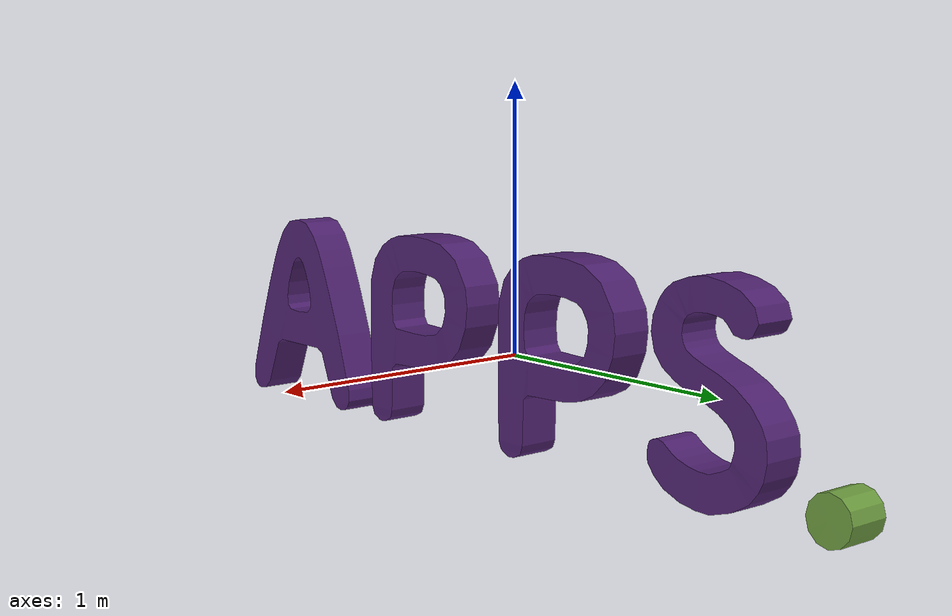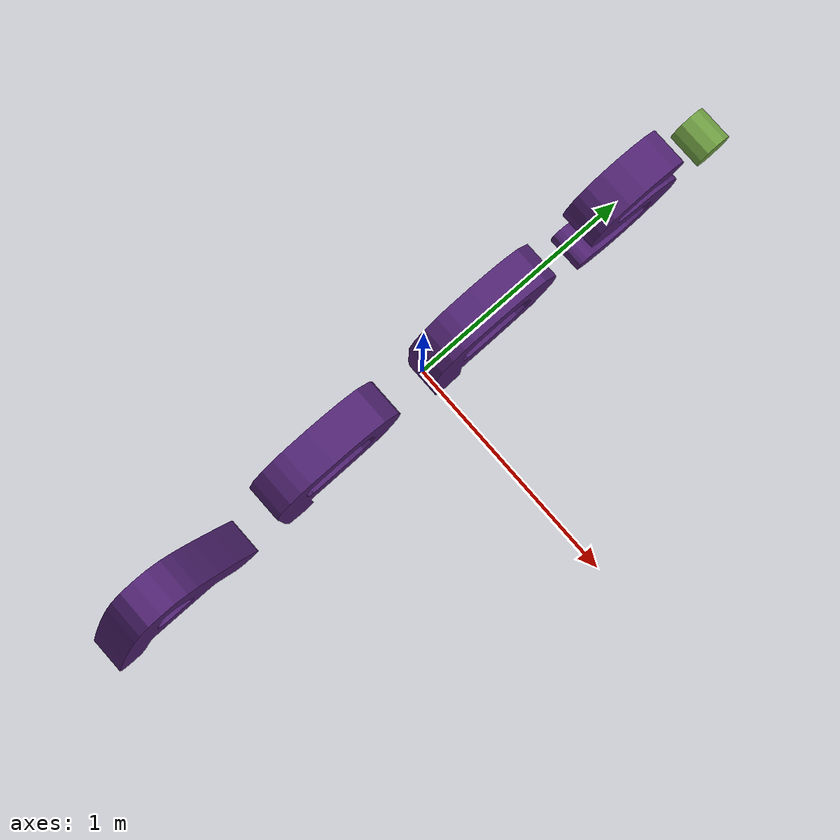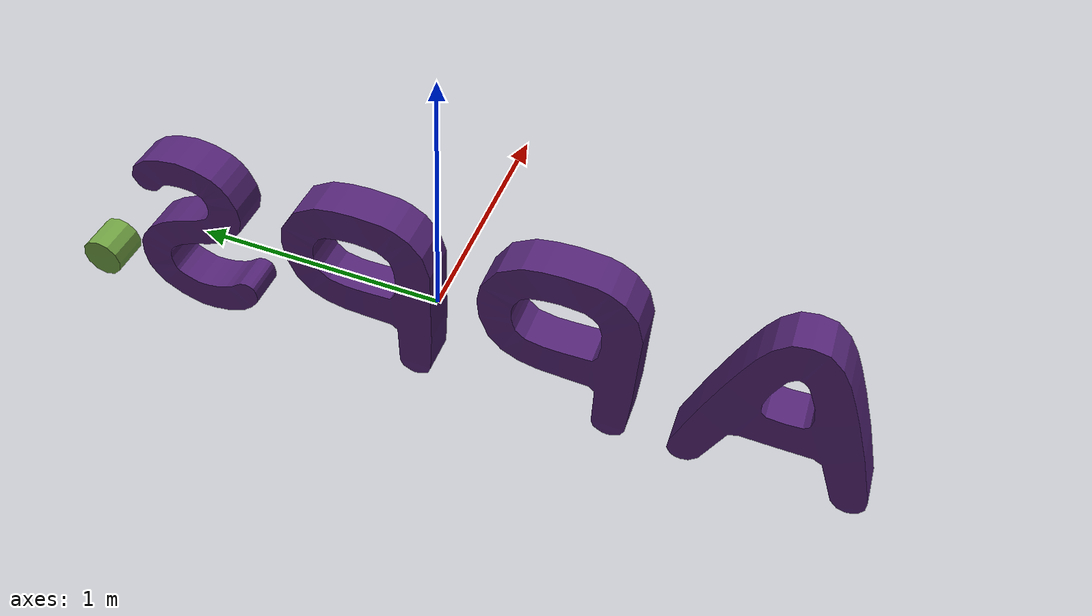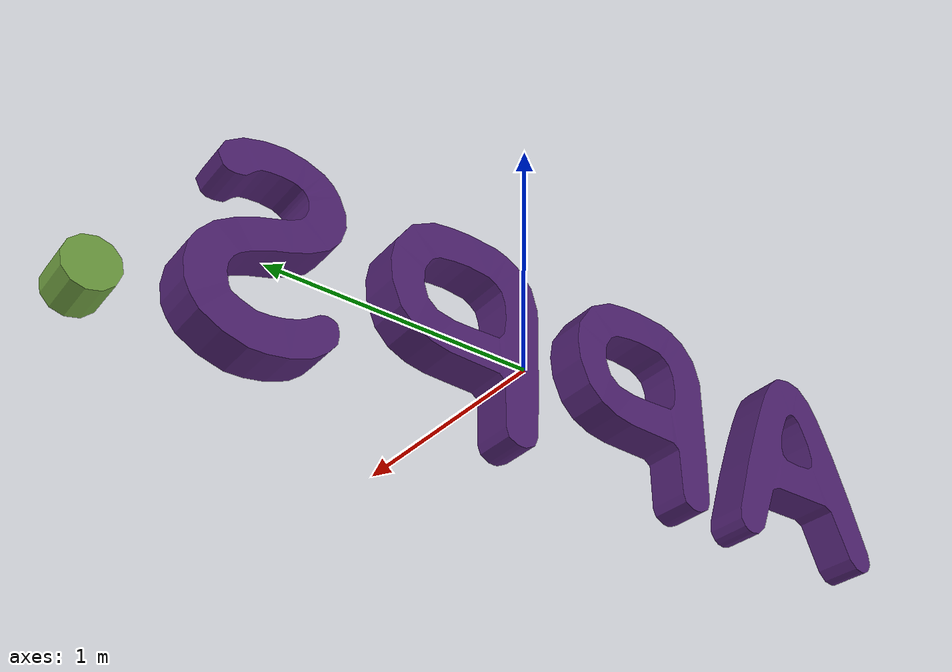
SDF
<?xml version='1.0'?>
<sdf version='1.5'>
    <model name="APPS_letters">
        <pose>0 0 0 0 0 0</pose>
        <static>true</static>
        <link name='model_body'>
            <visual name="visual">
                <geometry>
                    <mesh>
                        <uri>model://robert_gazebo/meshes/APPS_letters_visual.dae</uri>
                        <scale>1.5 1.5 1.5</scale>
                    </mesh>
                </geometry>
            </visual>

            <collision name="collision">
                <geometry>
                    <mesh>
                        <uri>model://robert_gazebo/meshes/APPS_letters_collision.dae</uri>
                        <scale>1.5 1.5 1.5</scale>
                    </mesh>
                </geometry>
            </collision>

            <inertial>
                <pose> 0 0 0 0 0 0</pose>
                <inertia>
                    <ixx>4.44</ixx>
                    <ixy>0</ixy>
                    <ixz>0</ixz>
                    <iyy>0.47</iyy>
                    <iyz>0</iyz>
                    <izz>4.05</izz>
                </inertia>
                <mass>10.0</mass>
            </inertial>
        </link>
    </model>
</sdf>
